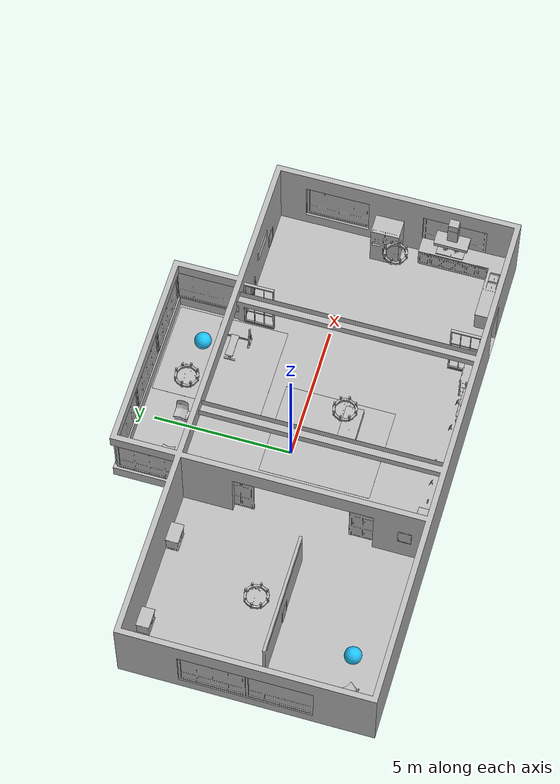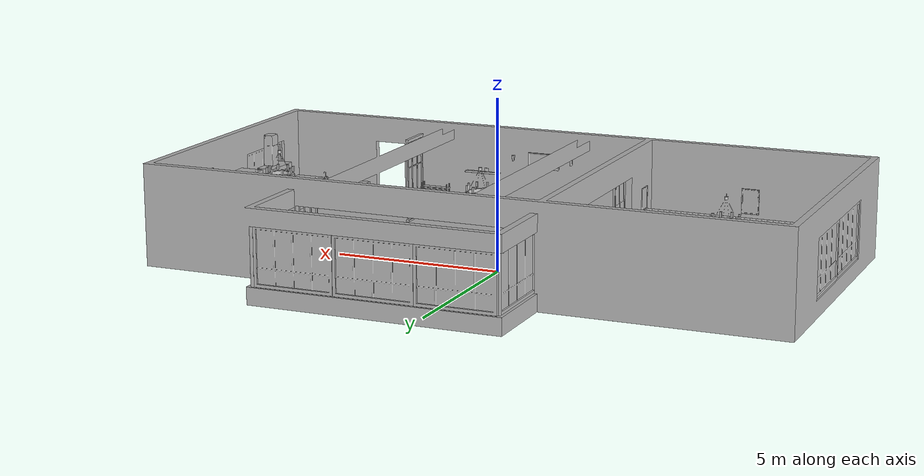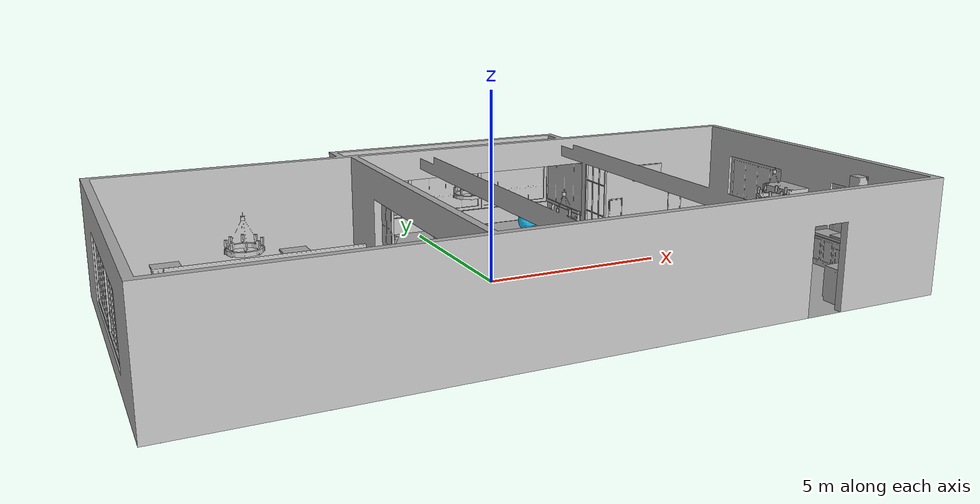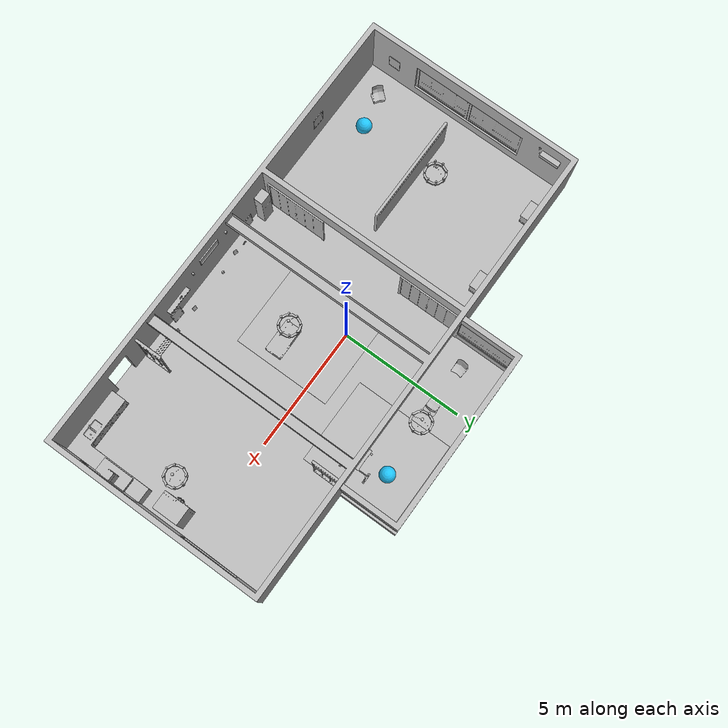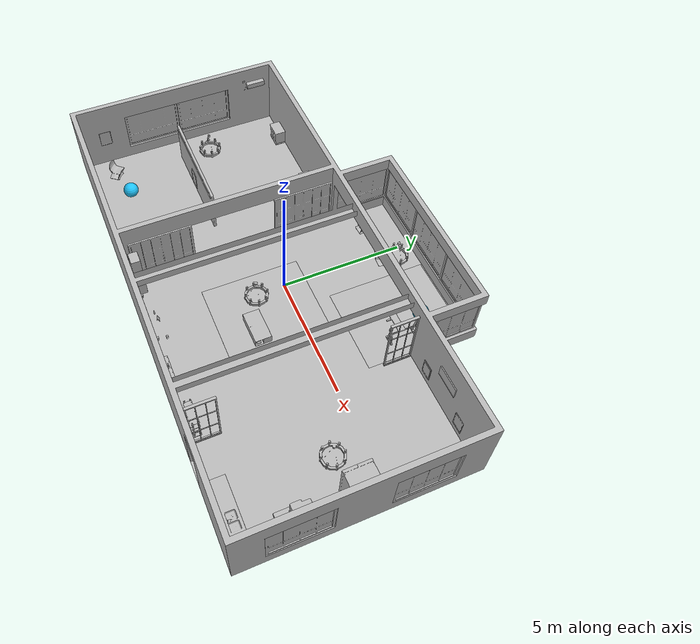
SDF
<sdf version="1.8">
 <world name="default">
  <physics name="1ms" type="ignored">
   <max_step_size>0.001</max_step_size>
   <real_time_factor>1</real_time_factor>
   <real_time_update_rate>1000</real_time_update_rate>
  </physics>
  <plugin name="gz::sim::systems::Physics" filename="gz-sim-physics-system"/>
  <plugin name="gz::sim::systems::UserCommands" filename="gz-sim-user-commands-system"/>
  <plugin name="gz::sim::systems::SceneBroadcaster" filename="gz-sim-scene-broadcaster-system"/>
  <plugin name="gz::sim::systems::Sensors" filename="gz-sim-sensors-system">
   <render_engine>ogre2</render_engine>
  </plugin>
  <plugin filename="MinimalScene" name="3D View">
   <gz-gui>
    <title>3D View</title>
    <property type="bool" key="showTitleBar">false</property>
    <property type="string" key="state">docked</property>
   </gz-gui>
   <engine>ogre2</engine>
   <scene>scene</scene>
   <ambient_light>0.4 0.4 0.4 1.0</ambient_light>
   <background_color>0.7 0.7 0.7 1.0</background_color>
   <camera_pose>-4.4965503 -0.4874 1.508684 0 -0 0</camera_pose>
   <camera_clip><near>0.25</near><far>25000</far></camera_clip>
  </plugin>
  <plugin filename="GzSceneManager" name="Scene Manager">
   <gz-gui>
    <property key="resizable" type="bool">true</property>
    <property key="width" type="double">5</property>
    <property key="height" type="double">5</property>
    <property key="state" type="string">floating</property>
    <property key="showTitleBar" type="bool">true</property>
   </gz-gui>
  </plugin>
  <plugin filename="WorldControl" name="World control">
   <gz-gui>
    <title>World control</title>
    <property type="bool" key="showTitleBar">true</property>
    <property type="bool" key="resizable">true</property>
    <property type="double" key="height">72</property>
    <property type="double" key="width">121</property>
    <property type="double" key="z">1</property>
    <property type="string" key="state">floating</property>
    <anchors target="3D View"><line own="left" target="left"/><line own="bottom" target="bottom"/></anchors>
   </gz-gui>
   <play_pause>true</play_pause>
   <step>true</step>
   <start_paused>true</start_paused>
   <service>/world/world_demo/control</service>
   <stats_topic>/world/world_demo/stats</stats_topic>
  </plugin>
  <model name="AirconditionerA_01_001">
   <static>true</static>
   <include><uri>model://aws_robomaker_residential_AirconditionerA_01</uri></include>
   <pose relative_to="">-9.199410 2.411230 2.084544 0 -0 0</pose>
  </model>
  <model name="AirconditionerB_01_001">
   <static>true</static>
   <include><uri>model://aws_robomaker_residential_AirconditionerB_01</uri></include>
   <pose relative_to="">-2.004656 -5.226610 0.003485 0 -0 0</pose>
  </model>
  <model name="Ball_01_001">
   <static>true</static>
   <include><uri>model://aws_robomaker_residential_Ball_01</uri></include>
   <pose relative_to="">3.295503 4.225674 0.318684 0 -0 0</pose>
  </model>
  <model name="Ball_01_003">
   <static>true</static>
   <include><uri>model://aws_robomaker_residential_Ball_01</uri></include>
   <pose relative_to="">-6.945503 -4.22174 0.318684 0 -0 0</pose>
  </model>
  <model name="NightStand_01_001">
   <static>true</static>
   <include><uri>model://aws_robomaker_residential_NightStand_01</uri></include>
   <pose relative_to="">-7.725510 2.860420 0.005258 -0.000002 0 0</pose>
  </model>
  <model name="NightStand_01_002">
   <static>true</static>
   <include><uri>model://aws_robomaker_residential_NightStand_01</uri></include>
   <pose relative_to="">-4.407341 2.860420 0.005256 0 0.000002 0</pose>
  </model>
  <model name="Board_01_001">
   <static>true</static>
   <include><uri>model://aws_robomaker_residential_Board_01</uri></include>
   <pose relative_to="">2.779073 -5.392703 1.538173 0 -0 0</pose>
  </model>
  <model name="ChairD_01_001">
   <static>true</static>
   <include><uri>model://aws_robomaker_residential_ChairD_01</uri></include>
   <pose relative_to="">-1.380775 4.104456 0 0 -0 0</pose>
  </model>
  <model name="ChairD_01_002">
   <static>true</static>
   <include><uri>model://aws_robomaker_residential_ChairD_01</uri></include>
   <pose relative_to="">0.325214 4.104456 0 0 -0 -3.138741</pose>
  </model>
  <model name="ChairD_01_003">
   <static>true</static>
   <include><uri>model://aws_robomaker_residential_ChairD_01</uri></include>
   <pose relative_to="">-8.270775 -4.504456 0 0 -0 0.869673</pose>
  </model>
  <model name="Chandelier_01_001">
   <static>true</static>
   <include><uri>model://aws_robomaker_residential_Chandelier_01</uri></include>
   <pose relative_to="">1.221061 4.155740 1.295000 0 -0 0</pose>
  </model>
  <model name="Chandelier_01_002">
   <static>true</static>
   <include><uri>model://aws_robomaker_residential_Chandelier_01</uri></include>
   <pose relative_to="">-6.451061 -0.692040 1.810000 0 -0 0</pose>
  </model>
  <model name="Chandelier_01_003">
   <static>true</static>
   <include><uri>model://aws_robomaker_residential_Chandelier_01</uri></include>
   <pose relative_to="">7.824061 -1.59 1.7510000 0 -0 0</pose>
  </model>
  <model name="Chandelier_01_004">
   <static>true</static>
   <include><uri>model://aws_robomaker_residential_Chandelier_01</uri></include>
   <pose relative_to="">1.221061 -1.592040 1.7873000 0 -0 0</pose>
  </model>
  <model name="Carpet_01_001">
   <static>true</static>
   <include><uri>model://aws_robomaker_residential_Carpet_01</uri></include>
   <pose relative_to="">0.785050 -1.106647 0.001106 0 -0 0</pose>
  </model>
  <model name="Carpet_01_002">
   <static>true</static>
   <include><uri>model://aws_robomaker_residential_Carpet_01</uri></include>
   <pose relative_to="">2.854050 3.45 0.000585 0 -0 0</pose>
  </model>
  <model name="SecurityCamera_01_001">
   <static>true</static>
   <include><uri>model://aws_robomaker_residential_SecurityCamera_01</uri></include>
   <pose relative_to="">0.842134 -4.996294 0.495067 0 -0 -2.841039</pose>
  </model>
  <model name="CoffeeTable_01_001">
   <static>true</static>
   <include><uri>model://aws_robomaker_residential_CoffeeTable_01</uri></include>
   <pose relative_to="">1.512301 -1.733438 0.041983 0.000000 0.000000 0.01000</pose>
  </model>
  <model name="CookingBench_01_001">
   <include><uri>model://aws_robomaker_residential_CookingBench_01</uri></include>
   <pose relative_to="">9.038383 -3.351140 0.903610 0 -0 3.137133</pose>
   <static>true</static>
  </model>
  <model name="FitnessEquipment_01_001">
   <static>true</static>
   <include><uri>model://aws_robomaker_residential_FitnessEquipment_01</uri></include>
   <pose relative_to="">3.484720 3.169104 0.003168 0 -0 0</pose>
  </model>
  <model name="FoldingDoor_01_001">
   <static>true</static>
   <include><uri>model://aws_robomaker_residential_FoldingDoor_01</uri></include>
   <pose relative_to="">-2.461096 1.844219 0.041881 0 -0 0</pose>
  </model>
  <model name="FoldingDoor_01_002">
   <static>true</static>
   <include><uri>model://aws_robomaker_residential_FoldingDoor_01</uri></include>
   <pose relative_to="">-2.461096 -4.053320 0.041881 0 -0 0</pose>
  </model>
  <model name="HouseWallB_01_001">
   <static>true</static>
   <include><uri>model://aws_robomaker_residential_HouseWallB_01</uri></include>
   <pose relative_to="">0 0 0 0 -0 0</pose>
  </model>
  <model name="FloorB_01_001">
   <static>true</static>
   <include><uri>model://aws_robomaker_residential_FloorB_01</uri></include>
   <pose relative_to="">0 0 0 0 -0 0</pose>
  </model>
  <model name="FoldingDoor_02_001">
   <static>true</static>
   <include><uri>model://aws_robomaker_residential_FoldingDoor_02</uri></include>
   <pose relative_to="">4.674231 2.46451 0 0 -0 3.14159</pose>
  </model>
  <model name="FoldingDoor_02_002">
   <static>true</static>
   <include><uri>model://aws_robomaker_residential_FoldingDoor_02</uri></include>
   <pose relative_to="">4.8912 -4.84968 0 0 -0 0</pose>
  </model>
  <model name="KitchenCabinet_01_001">
   <static>true</static>
   <include><uri>model://aws_robomaker_residential_KitchenCabinet_01</uri></include>
   <pose relative_to="">8.002009 -3.836509 0.012068 0 -0 -3.140001</pose>
  </model>
  <model name="LightC_01_001">
   <static>true</static>
   <include><uri>model://aws_robomaker_residential_LightC_01</uri></include>
   <pose relative_to="">1.769567 -5.4443710 2.000000 0 -0 0</pose>
  </model>
  <model name="LightC_01_002">
   <static>true</static>
   <include><uri>model://aws_robomaker_residential_LightC_01</uri></include>
   <pose relative_to="">-0.138245 -5.4443710 2.000000 0 -0 0</pose>
  </model>
  <model name="PortraitA_01">
   <static>true</static>
   <include><uri>model://aws_robomaker_residential_PortraitA_01</uri></include>
   <pose relative_to="">-2.712360 -4.817539 1.00000 0 -0 1.566796</pose>
  </model>
  <model name="PortraitB_01">
   <static>true</static>
   <include><uri>model://aws_robomaker_residential_PortraitB_01</uri></include>
   <pose relative_to="">-1.279683 -5.429630 0.0 -0.076901 0 -3.116718</pose>
  </model>
  <model name="PortraitB_02">
   <static>true</static>
   <include><uri>model://aws_robomaker_residential_PortraitB_02</uri></include>
   <pose relative_to="">5.737017 3.080310 0.300000 0 -0 0</pose>
  </model>
  <model name="PortraitB_03">
   <static>true</static>
   <include><uri>model://aws_robomaker_residential_PortraitB_03</uri></include>
   <pose relative_to="">3.071380 -5.349366 0.005494 -0.168428 0.0 3.104232</pose>
  </model>
  <model name="PortraitA_02">
   <static>true</static>
   <include><uri>model://aws_robomaker_residential_PortraitA_02</uri></include>
   <pose relative_to="">7.937017 3.080310 0.300000 0 -0 3.14</pose>
  </model>
  <model name="PortraitC_01">
   <static>true</static>
   <include><uri>model://aws_robomaker_residential_PortraitC_01</uri></include>
   <pose relative_to="">-9.294904 -4.526084 1.000000 0 -0 1.554734</pose>
  </model>
  <model name="PortraitD_01">
   <static>true</static>
   <include><uri>model://aws_robomaker_residential_PortraitD_01</uri></include>
   <pose relative_to="">0.789763 -5.478725 1.800000 0 -0 3.138531</pose>
  </model>
  <model name="PortraitD_02">
   <static>true</static>
   <include><uri>model://aws_robomaker_residential_PortraitD_02</uri></include>
   <pose relative_to="">6.870181 3.080310 1.488439 0 -0 0</pose>
  </model>
  <model name="PortraitE_01">
   <static>true</static>
   <include><uri>model://aws_robomaker_residential_PortraitE_01</uri></include>
   <pose relative_to="">-5.773094 -5.492466 1.000000 0 -0 3.132627</pose>
  </model>
  <model name="PortraitE_02">
   <static>true</static>
   <include><uri>model://aws_robomaker_residential_PortraitE_02</uri></include>
   <pose relative_to="">-6.193025 -1.590208 0.3 0 -0 0.004290</pose>
  </model>
  <model name="DeskPortraitA_01">
   <static>true</static>
   <include><uri>model://aws_robomaker_residential_DeskPortraitA_01</uri></include>
   <pose relative_to="">-0.036864 -5.110156 0.498660 0 -0 2.927784</pose>
  </model>
  <model name="DeskPortraitA_02">
   <static>true</static>
   <include><uri>model://aws_robomaker_residential_DeskPortraitA_02</uri></include>
   <pose relative_to="">2.046082 -1.892926 0.0703880 -0.018328 -0.000441 1.576216</pose>
  </model>
  <model name="DeskPortraitD_01">
   <static>true</static>
   <include><uri>model://aws_robomaker_residential_DeskPortraitD_01</uri></include>
   <pose relative_to="">2.645560 -5.376225 1.573738 0 -0 -3.112826</pose>
  </model>
  <model name="DeskPortraitD_02">
   <static>true</static>
   <include><uri>model://aws_robomaker_residential_DeskPortraitD_02</uri></include>
   <pose relative_to="">-0.589211 -5.109890 0.192145 -0.000015 -0.000174 -3.112544</pose>
  </model>
  <model name="DeskPortraitD_03">
   <static>true</static>
   <include><uri>model://aws_robomaker_residential_DeskPortraitD_03</uri></include>
   <pose relative_to="">1.826729 -1.464881 0.126208 0.000010 0.000006 -3.114380</pose>
  </model>
  <model name="DeskPortraitD_04">
   <static>true</static>
   <include><uri>model://aws_robomaker_residential_DeskPortraitD_04</uri></include>
   <pose relative_to="">4.302132 -5.176568 0.202496 0.007118 -0.000001 3.046683</pose>
  </model>
  <model name="DeskPortraitB_01">
   <static>true</static>
   <include><uri>model://aws_robomaker_residential_DeskPortraitB_01</uri></include>
   <pose relative_to="">3.547376 -5.083898 -0.012660 -0.336622 -0.000001 3.046741</pose>
  </model>
  <model name="DeskPortraitB_02">
   <static>true</static>
   <include><uri>model://aws_robomaker_residential_DeskPortraitB_02</uri></include>
   <pose relative_to="">2.486270 -5.102525 -0.012660 -0.336621 0.000000 3.046798</pose>
  </model>
  <model name="Rangehood_01_001">
   <static>true</static>
   <include><uri>model://aws_robomaker_residential_Rangehood_01</uri></include>
   <pose relative_to="">9.019794 -3.369940 1.507605 0 -0 0</pose>
  </model>
  <model name="Refrigerator_01_001">
   <static>true</static>
   <include><uri>model://aws_robomaker_residential_Refrigerator_01</uri></include>
   <pose relative_to="">8.702731 -1.032031 0 0 -0 -1.563499</pose>
  </model>
  <model name="ShoeRack_01_001">
   <static>true</static>
   <include><uri>model://aws_robomaker_residential_ShoeRack_01</uri></include>
   <pose relative_to="">4.297978 -5.173566 0 0 -0 0</pose>
  </model>
  <model name="RoomWall_01_001">
   <static>true</static>
   <include><uri>model://aws_robomaker_residential_RoomWall_01</uri></include>
   <pose relative_to="">-6.097550 -1.496180 0.028124 0 -0 0</pose>
  </model>
  <model name="RoomWindow_01_001">
   <static>true</static>
   <include><uri>model://aws_robomaker_residential_RoomWindow_01</uri></include>
   <pose relative_to="">-9.418600 -0.026285 0.502739 0 -0 0</pose>
  </model>
  <model name="RoomWindow_01_002">
   <static>true</static>
   <include><uri>model://aws_robomaker_residential_RoomWindow_01</uri></include>
   <pose relative_to="">-9.418600 -2.374090 0.502739 0 -0 0</pose>
  </model>
  <model name="RoomWindow_01_003">
   <static>true</static>
   <include><uri>model://aws_robomaker_residential_RoomWindow_01</uri></include>
   <pose relative_to="">9.422616 -3.373981 0.502739 0 -0 -3.136099</pose>
  </model>
  <model name="RoomWindow_01_004">
   <static>true</static>
   <include><uri>model://aws_robomaker_residential_RoomWindow_01</uri></include>
   <pose relative_to="">9.422558 0.968520 0.496581 0 -0 -3.136099</pose>
  </model>
  <model name="RoomWindow_01_005">
   <static>true</static>
   <include><uri>model://aws_robomaker_residential_RoomWindow_01</uri></include>
   <pose relative_to="">4.722317 4.470281 0.502739 0 -0 -3.136099</pose>
  </model>
  <model name="RoomWindow_01_006">
   <static>true</static>
   <include><uri>model://aws_robomaker_residential_RoomWindow_01</uri></include>
   <pose relative_to="">3.488520 5.600688 0.502739 0 -0 -1.566274</pose>
  </model>
  <model name="RoomWindow_01_007">
   <static>true</static>
   <include><uri>model://aws_robomaker_residential_RoomWindow_01</uri></include>
   <pose relative_to="">1.140949 5.600688 0.502739 0 -0 -1.566274</pose>
  </model>
  <model name="RoomWindow_01_008">
   <static>true</static>
   <include><uri>model://aws_robomaker_residential_RoomWindow_01</uri></include>
   <pose relative_to="">-1.199340 5.600688 0.502739 0 -0 -1.566274</pose>
  </model>
  <model name="RoomWindow_01_009">
   <static>true</static>
   <include><uri>model://aws_robomaker_residential_RoomWindow_01</uri></include>
   <pose relative_to="">-2.396624 4.387607 0.502739 0 -0 0</pose>
  </model>
  <light name="LivingRoom_CeilingLight_0" type="point">
   <pose relative_to="">1.194296 4.155759 2.2 0 -0 0</pose>
   <diffuse>0.5 0.5 0.5 1</diffuse>
   <specular>0.1 0.1 0.1 1</specular>
   <attenuation>
    <range>20</range>
    <constant>0.32</constant>
    <linear>0.01</linear>
    <quadratic>0.03</quadratic>
   </attenuation>
   <direction>0 0 -1</direction>
  </light>
  <light name="LivingRoom_CeilingLight_1" type="point">
   <pose relative_to="">1.194296 -1.589959 2.2 0 -0 0</pose>
   <diffuse>0.5 0.5 0.5 1</diffuse>
   <specular>0.1 0.1 0.1 1</specular>
   <attenuation>
    <range>20</range>
    <constant>0.05</constant>
    <linear>0.01</linear>
    <quadratic>0.09</quadratic>
   </attenuation>
   <direction>0 0 -1</direction>
  </light>
  <light name="LivingRoom_WallLight_0" type="point">
   <pose relative_to="">1.76956 -5.444370 2.2 0 -0 0</pose>
   <diffuse>0.24 0.24 0.24 1</diffuse>
   <specular>0.1 0.1 0.1 1</specular>
   <attenuation>
    <range>20</range>
    <constant>0.12</constant>
    <linear>0.00</linear>
    <quadratic>0.03</quadratic>
   </attenuation>
   <direction>0 0 -1</direction>
  </light>
  <light name="LivingRoom_WallLight_1" type="point">
   <pose relative_to="">-0.13826 -5.444370 2.2 0 -0 0</pose>
   <diffuse>0.24 0.24 0.24 1</diffuse>
   <specular>0.1 0.1 0.1 1</specular>
   <attenuation>
    <range>20</range>
    <constant>0.12</constant>
    <linear>0.00</linear>
    <quadratic>0.03</quadratic>
   </attenuation>
   <direction>0 0 -1</direction>
  </light>
  <light name="TV_Light_0" type="point">
   <pose relative_to="">0.8269 -4.939577 1.1 0 -0 0</pose>
   <diffuse>0.31372 0.31372 0.34901 1</diffuse>
   <specular>0.1 0.1 0.1 1</specular>
   <attenuation>
    <range>3</range>
    <constant>0.10</constant>
    <linear>0.04</linear>
    <quadratic>0.50</quadratic>
   </attenuation>
   <direction>0 0 -1</direction>
  </light>
  <light name="BedRoom_Portrait_Light_0" type="spot">
   <pose relative_to="">-6.190379 -1.829697 1.5587 0.3 -0 0.0</pose>
   <diffuse>0.5 0.5 0.5 1</diffuse>
   <specular>0.1 0.1 0.1 1</specular>
   <attenuation>
    <range>20</range>
    <constant>0.50</constant>
    <linear>0.01</linear>
    <quadratic>0.00</quadratic>
   </attenuation>
   <spot><inner_angle>0.6</inner_angle><outer_angle>1.0</outer_angle><falloff>1.0</falloff></spot>
   <direction>0 0 -1</direction>
  </light>
  <light name="BedRoom_CeilingLight_0" type="point">
   <pose relative_to="">-6.451061 -0.692040 2.000000 0 -0 0</pose>
   <diffuse>0.5 0.5 0.5 1</diffuse>
   <specular>0.1 0.1 0.1 1</specular>
   <attenuation>
    <range>20</range>
    <constant>0.32</constant>
    <linear>0.01</linear>
    <quadratic>0.03</quadratic>
   </attenuation>
   <direction>0 0 -1</direction>
  </light>
  <light name="Kitchen_CeilingLight_0" type="point">
   <pose relative_to="">7.8582 -1.5905 2.280000 0 -0 0</pose>
   <diffuse>0.5 0.5 0.5 1</diffuse>
   <specular>0.1 0.1 0.1 1</specular>
   <attenuation>
    <range>20</range>
    <constant>0.3</constant>
    <linear>0.01</linear>
    <quadratic>0.01</quadratic>
   </attenuation>
   <direction>0 0 -1</direction>
  </light>
 </world>
</sdf>

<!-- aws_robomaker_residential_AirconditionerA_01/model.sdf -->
<sdf version="1.8">
  <model name="aws_robomaker_residential_AirconditionerA_01">
    <link name="link">
      <inertial>
        <mass>1</mass>
        <inertia>
          <ixx>  8.0943111097e-02 </ixx>
          <ixy> -8.1265470074e-06 </ixy>
          <ixz>  3.8829570571e-03 </ixz>
          <iyy>  7.7648100944e-02 </iyy>
          <iyz>  5.1340621216e-05 </iyz>
          <izz>  1.1188592910e-02 </izz>
        </inertia>
      </inertial>
      <collision name="collision">
        <geometry>
          <mesh>
            <uri>model://aws_robomaker_residential_AirconditionerA_01/meshes/aws_AirconditionerA_01_collision.DAE</uri>
            <scale>1 1 1</scale>
          </mesh>
        </geometry>
      </collision>
      <visual name="visual">
	      <geometry>
          <mesh>
            <uri>model://aws_robomaker_residential_AirconditionerA_01/meshes/aws_AirconditionerA_01_visual.DAE</uri>
          </mesh>
        </geometry>
        <meta> <layer> 1 </layer></meta>
      </visual>
    </link>
	  <static>1</static>
  </model>
</sdf>

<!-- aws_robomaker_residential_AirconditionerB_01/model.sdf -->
<sdf version="1.8">
  <model name="aws_robomaker_residential_AirconditionerB_01">
    <link name="link">
      <inertial>
        <mass>1</mass>
        <inertia>
          <ixx>  3.5606825555e-01 </ixx>
          <ixy> -4.7724185539e-11 </ixy>
          <ixz>  4.6632465087e-14 </ixz>
          <iyy>  3.5592090264e-02 </iyy>
          <iyz> -2.6310178830e-11 </iyz>
          <izz>  3.6376805669e-01 </izz>
        </inertia>
      </inertial>
      <collision name="collision">
        <geometry>
          <mesh>
	  <uri>model://aws_robomaker_residential_AirconditionerB_01/meshes/aws_AirconditionerB_01_collision.DAE</uri>
            <scale>1 1 1</scale>
          </mesh>
        </geometry>
      </collision>
      <visual name="visual">
	      <geometry>
          <mesh>
            <uri>model://aws_robomaker_residential_AirconditionerB_01/meshes/aws_AirconditionerB_01_visual.DAE</uri>
          </mesh>
        </geometry>
        <meta> <layer> 1 </layer></meta>
      </visual>
    </link>
  </model>
</sdf>

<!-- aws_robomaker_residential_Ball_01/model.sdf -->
<sdf version="1.8">
  <model name="aws_robomaker_residential_Ball_01">
    <link name="link">
      <inertial>
        <mass>0.12</mass>
        <inertia>
          <ixx>  3.8749023340e-02 </ixx>
          <ixy> -1.0450629836e-09 </ixy>
          <ixz>  4.9179161356e-09 </ixz>
          <iyy>  3.8433714890e-02 </iyy>
          <iyz>  5.9071629616e-11 </iyz>
          <izz>  3.8749023340e-02 </izz>
        </inertia>
      </inertial>
      <collision name="collision">

        <geometry>
          <sphere>
            <radius>0.31 </radius>
          </sphere>

        </geometry>

        <surface>
          <friction>
            <ode>
              <mu>0.85</mu>
              <mu2>0.85</mu2>
            </ode>
          </friction>

        <!-- Add some bounciness to the ball -->
          <contact>
            <ode>
              <kd>8500</kd>
              <max_vel>5.1</max_vel>
            </ode>
          </contact>
        </surface>

      </collision>
      <visual name="visual">
	      <geometry>
          <sphere>
            <radius>0.31 </radius>
          </sphere>
      </geometry>
          <material>
            <diffuse>0.12 0.76 0.97 1</diffuse>
            <ambient>0.03 0.21 0.27 1</ambient>
          </material>
        <meta> <layer> 1 </layer></meta>
      </visual>
    </link>
  </model>
</sdf>

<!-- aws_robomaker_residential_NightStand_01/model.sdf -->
<sdf version="1.8">
  <model name="aws_robomaker_residential_NightStand_01">
    <link name="link">
      <inertial>
        <mass>13.6</mass>
        <inertia>
          <ixx>  5.9068121342e-02 </ixx>
          <ixy> -0.0000000000e+00 </ixy>
          <ixz>  0.0000000000e+00 </ixz>
          <iyy>  6.4866772161e-02 </iyy>
          <iyz>  0.0000000000e+00 </iyz>
          <izz>  8.5677794724e-02 </izz>
        </inertia>
      </inertial>
      <collision name="collision">
        <geometry>
          <mesh>
            <uri>model://aws_robomaker_residential_NightStand_01/meshes/aws_NightStand_01_collision.DAE</uri>
            <scale>1 1 1</scale>
          </mesh>
        </geometry>
      </collision>
      <visual name="visual">
	      <geometry>
          <mesh>
            <uri>model://aws_robomaker_residential_NightStand_01/meshes/aws_NightStand_01_visual.DAE</uri>
          </mesh>
        </geometry>
        <meta> <layer> 1 </layer></meta>
      </visual>
    </link>
    <static>1</static>
  </model>
</sdf>

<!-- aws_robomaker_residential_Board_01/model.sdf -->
<sdf version="1.8">
  <model name="aws_robomaker_residential_Board_01">
    <link name="link">
      <inertial>
        <mass>1</mass>
      </inertial>
      <collision name="collision">
        <geometry>
          <mesh>
            <uri>model://aws_robomaker_residential_Board_01/meshes/aws_Board_01_collision.DAE</uri>
            <scale>1 1 1</scale>
          </mesh>
        </geometry>
      </collision>
      <visual name="visual">
	      <geometry>
          <mesh>
            <uri>model://aws_robomaker_residential_Board_01/meshes/aws_Board_01_visual.DAE</uri>
          </mesh>
        </geometry>
      <meta> <layer> 2 </layer></meta>
      </visual>
    </link>

    <static>1</static>
  </model>
</sdf>

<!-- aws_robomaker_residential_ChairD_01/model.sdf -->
<sdf version="1.8">
  <model name="aws_robomaker_residential_ChairD_01">
    <link name="link">

      <inertial>
        <inertia>
          <ixx>  5.5200427517e-02 </ixx>
          <ixy>  1.2896722661e-02 </ixy>
          <ixz>  1.5893767493e-04 </ixz>
          <iyy>  4.0396087891e-02 </iyy>
          <iyz> -2.8293607821e-04 </iyz>
          <izz>  6.5806204881e-02 </izz>
        </inertia>
      </inertial>

      <collision name="collision">

        <geometry>
          <mesh>
            <uri>model://aws_robomaker_residential_ChairD_01/meshes/aws_ChairD_01_collision.DAE</uri>
            <scale>1 1 1</scale>
          </mesh>
        </geometry>

      </collision>
      <visual name="visual">
	      <geometry>
          <mesh>
            <uri>model://aws_robomaker_residential_ChairD_01/meshes/aws_ChairD_01_visual.DAE</uri>
          </mesh>
        </geometry>
        <meta> <layer> 1 </layer></meta>
      </visual>
    </link>
  </model>
</sdf>

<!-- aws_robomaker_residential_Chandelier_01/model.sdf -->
<sdf version="1.8">
  <model name="aws_robomaker_residential_Chandelier_01">
    <link name="link">
      <inertial>
        <mass>1</mass>
        <inertia>
          <ixx>  9.8314889873e-02 </ixx>
          <ixy>  8.1564130546e-05 </ixy>
          <ixz> -2.2898136825e-09 </ixz>
          <iyy>  1.1882498465e-01 </iyy>
          <iyz> -1.1171926154e-10 </iyz>
          <izz>  9.7043315192e-02 </izz>
        </inertia>
      </inertial>
      <collision name="collision">
        <geometry>
          <mesh>
            <uri>model://aws_robomaker_residential_Chandelier_01/meshes/aws_Chandelier_01_collision.DAE</uri>
            <scale>1 1 1</scale>
          </mesh>
        </geometry>
      </collision>
      <visual name="visual">
	      <geometry>
          <mesh>
            <uri>model://aws_robomaker_residential_Chandelier_01/meshes/aws_Chandelier_01_visual.DAE</uri>
          </mesh>
        </geometry>
      <meta> <layer> 2 </layer></meta>
      </visual>
    </link>
	  <static>1</static>
  </model>
</sdf>

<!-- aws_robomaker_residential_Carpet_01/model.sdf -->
<sdf version="1.8">
  <model name="aws_robomaker_residential_Carpet_01">
    <link name="link">
      <inertial>
        <mass>8.1</mass>
        <inertia>
          <ixx>  1.3412920773e+00 </ixx>
          <ixy> -0.0000000000e+00 </ixy>
          <ixz>  0.0000000000e+00 </ixz>
          <iyy>  2.3413254318e+00 </iyy>
          <iyz>  0.0000000000e+00 </iyz>
          <izz>  1.0000339302e+00 </izz>
        </inertia>
      </inertial>

      <collision name="collision">

        <geometry>
          <mesh>
            <uri>model://aws_robomaker_residential_Carpet_01/meshes/aws_Carpet_01_collision.DAE</uri>
            <scale>1 1 0.95</scale>
          </mesh>
        </geometry>

        <surface>
          <friction>
            <ode>
              <mu>100</mu>
              <mu2>50</mu2>
            </ode>
          </friction>
          <contact>
            <ode>
            </ode>
          </contact>
        </surface>

        <pose>0 0 -0.01 0 0 0 </pose>
      </collision>

      <visual name="visual">
	      <geometry>
          <mesh>
            <uri>model://aws_robomaker_residential_Carpet_01/meshes/aws_Carpet_01_visual.DAE</uri>
          </mesh>
        </geometry>
        <meta> <layer> 1 </layer></meta>
      </visual>
    </link>

    <static>1</static>

  </model>
</sdf>

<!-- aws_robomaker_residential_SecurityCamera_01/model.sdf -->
<sdf version="1.8">
  <model name="aws_robomaker_residential_SecurityCamera_01">
    <link name="link">
      <inertial>
        <mass>1</mass>
        <inertia>
          <ixx>  2.6611078438e-03 </ixx>
          <ixy>  1.0706885011e-05 </ixy>
          <ixz>  2.0864173746e-07 </ixz>
          <iyy>  1.0021836517e-03 </iyy>
          <iyz> -5.4377964674e-05 </iyz>
          <izz>  2.8448705233e-03 </izz>
        </inertia>
      </inertial>
      <collision name="collision">
        <geometry>
          <mesh>
            <uri>model://aws_robomaker_residential_SecurityCamera_01/meshes/aws_SecurityCamera_01_collision.DAE</uri>
            <scale>1 1 1</scale>
          </mesh>
        </geometry>
      </collision>
      <visual name="visual">
	      <geometry>
          <mesh>
            <uri>model://aws_robomaker_residential_SecurityCamera_01/meshes/aws_SecurityCamera_01_visual.DAE</uri>
          </mesh>
        </geometry>
        <meta>
          <layer>2</layer>
        </meta>
      </visual>
    </link>
  </model>
</sdf>

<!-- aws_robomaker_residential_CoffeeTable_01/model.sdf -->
<sdf version="1.8">
  <model name="aws_robomaker_residential_CoffeeTable_01">
    <link name="link">
      <inertial>
        <mass>21.7</mass>

        <inertia>
          <ixx>0.8137499999999998</ixx>
          <ixy>0</ixy>
          <ixz>0</ixz>
          <iyy>2.76675</iyy>
          <iyz>0</iyz>
          <izz>3.254</izz>
        </inertia>

      </inertial>

      <collision name="collision">
        <geometry>
          <mesh>
            <uri>model://aws_robomaker_residential_CoffeeTable_01/meshes/aws_CoffeeTable_01_collision.DAE</uri>
            <scale>1 1 1</scale>
          </mesh>
        </geometry>

        <surface>
          <contact>
            <ode>
              <max_vel>0.01</max_vel>
            </ode>
          </contact>
         </surface>
      </collision>

      <visual name="visual">
	      <geometry>
          <mesh>
            <uri>model://aws_robomaker_residential_CoffeeTable_01/meshes/aws_CoffeeTable_01_visual.DAE</uri>
          </mesh>
        </geometry>
        <meta> <layer> 1 </layer></meta>
      </visual>
    </link>
    <static>1</static>
  </model>
</sdf>

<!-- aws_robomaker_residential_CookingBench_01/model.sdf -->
<sdf version="1.8">
  <model name="aws_robomaker_residential_CookingBench_01">
    <link name="link">
      <inertial>
        <mass>1</mass>
        <inertia>
          <ixx>  8.4704931274e-02 </ixx>
          <ixy> -3.3582970635e-14 </ixy>
          <ixz> -1.8657205909e-15 </ixz>
          <iyy>  1.0870613560e-01 </iyy>
          <iyz> -8.9711047690e-09 </iyz>
          <izz>  2.5599100723e-02 </izz>
        </inertia>
      </inertial>
      <collision name="collision">
        <geometry>
          <mesh>
            <uri>model://aws_robomaker_residential_CookingBench_01/meshes/aws_CookingBench_01_collision.DAE</uri>
            <scale>1 1 1</scale>
          </mesh>
        </geometry>
      </collision>
      <visual name="visual">
	      <geometry>
          <mesh>
            <uri>model://aws_robomaker_residential_CookingBench_01/meshes/aws_CookingBench_01_visual.DAE</uri>
          </mesh>
        </geometry>
        <meta> <layer> 1 </layer></meta>
      </visual>
    </link>
  </model>
</sdf>

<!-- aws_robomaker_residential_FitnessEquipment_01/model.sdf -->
<sdf version="1.8">
  <model name="aws_robomaker_residential_FitnessEquipment_01">
    <link name="link">
      <inertial>
        <mass>80</mass>
        <inertia>
          <ixx>  1.5231681051e-01 </ixx>
          <ixy> -1.0236824255e-02 </ixy>
          <ixz>  4.5347695138e-04 </ixz>
          <iyy>  2.2216050074e-01 </iyy>
          <iyz>  5.9325087530e-05 </iyz>
          <izz>  1.4138500592e-01 </izz>
        </inertia>
      </inertial>
      <collision name="collision">
        <geometry>
          <mesh>
            <uri>model://aws_robomaker_residential_FitnessEquipment_01/meshes/aws_FitnessEquipment_01_collision.DAE</uri>
            <scale>1 1 1</scale>
          </mesh>
        </geometry>
      </collision>
      <visual name="visual">
	      <geometry>
          <mesh>
            <uri>model://aws_robomaker_residential_FitnessEquipment_01/meshes/aws_FitnessEquipment_01_visual.DAE</uri>
          </mesh>
        </geometry>
        <meta> <layer> 1 </layer></meta>
      </visual>
    </link>
  <static>1</static>
  </model>
</sdf>

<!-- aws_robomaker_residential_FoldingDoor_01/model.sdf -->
<sdf version="1.8">
  <model name="aws_robomaker_residential_FoldingDoor_01">
    <link name="link">
      <inertial>
        <mass>1</mass>
        <inertia>
          <ixx>  9.3119001932e-01 </ixx>
          <ixy>  2.9413508071e-11 </ixy>
          <ixz>  2.9006137070e-14 </ixz>
          <iyy>  5.2412406595e-01 </iyy>
          <iyz>  2.8545710540e-11 </iyz>
          <izz>  4.0867490543e-01 </izz>
        </inertia>
      </inertial>
      <collision name="collision">
        <geometry>
          <mesh>
            <uri>model://aws_robomaker_residential_FoldingDoor_01/meshes/aws_FoldingDoor_01_collision.DAE</uri>
            <scale>1 1 1</scale>
          </mesh>
        </geometry>
      </collision>
      <visual name="visual">
	      <geometry>
          <mesh>
            <uri>model://aws_robomaker_residential_FoldingDoor_01/meshes/aws_FoldingDoor_01_visual.DAE</uri>
          </mesh>
        </geometry>
      <meta> <layer> 2 </layer></meta>
      </visual>
    </link>
	  <static>1</static>
  </model>
</sdf>

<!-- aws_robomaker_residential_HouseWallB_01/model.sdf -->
<sdf version="1.8">
  <model name="aws_robomaker_residential_HouseWallB_01">
    <link name="link">
      <inertial>
        <mass>1</mass>
      </inertial>
      <collision name="collision">
        <geometry>
          <mesh>
            <uri>model://aws_robomaker_residential_HouseWallB_01/meshes/aws_HouseWallB_01_collision.DAE</uri>
            <scale>1 1 1</scale>
          </mesh>
        </geometry>
      </collision>
      <visual name="visual">
	      <geometry>
          <mesh>
            <uri>model://aws_robomaker_residential_HouseWallB_01/meshes/aws_HouseWallB_01_visual.DAE</uri>
          </mesh>
        </geometry>
      <meta> <layer> 2 </layer></meta>
      </visual>
    </link>
<static>1</static>
  </model>
</sdf>

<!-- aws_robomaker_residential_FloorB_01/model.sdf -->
<sdf version="1.8">
  <model name="aws_robomaker_residential_FloorB_01">
    <link name="link">
      <inertial>
        <mass>100</mass>
        <inertia>
          <ixx>  8.9147242934e+00 </ixx>
          <ixy> -2.1042172774e-11 </ixy>
          <ixz>  5.6353464636e-01 </ixz>
          <iyy>  3.6723713216e+01 </iyy>
          <iyz> -5.7139224410e-10 </iyz>
          <izz>  2.7809315968e+01 </izz>
        </inertia>
      </inertial>

      <collision name="collision">
        <geometry>
          <mesh>
            <uri>model://aws_robomaker_residential_FloorB_01/meshes/aws_FloorB_01_collision.DAE</uri>
            <scale>1 1 0.9</scale>
          </mesh>
        </geometry>

        <surface>
          <friction>
            <ode>
              <mu>100</mu>
              <mu2>50</mu2>
            </ode>
          </friction>
        </surface>
      </collision>

      <visual name="visual">
	      <geometry>
          <mesh>
            <uri>model://aws_robomaker_residential_FloorB_01/meshes/aws_FloorB_01_visual.DAE</uri>
          </mesh>
        </geometry>
        <meta> <layer> 1 </layer></meta>
      </visual>
    </link>

	<static>1</static>
  </model>
</sdf>

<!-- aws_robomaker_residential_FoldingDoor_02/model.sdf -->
<sdf version="1.8">
  <model name="aws_robomaker_residential_FoldingDoor_02">
    <link name="link">
      <inertial>
        <mass>1</mass>
        <inertia>
          <ixx>  6.7038465772e-01 </ixx>
          <ixy>  1.3526701807e-11 </ixy>
          <ixz>  1.5530775261e-13 </ixz>
          <iyy>  1.0675443047e-01 </iyy>
          <iyz>  2.9926273083e-09 </iyz>
          <izz>  5.6555139368e-01 </izz>
        </inertia>
      </inertial>
      <collision name="collision">
        <geometry>
          <mesh>
            <uri>model://aws_robomaker_residential_FoldingDoor_02/meshes/aws_FoldingDoor_02_collision.DAE</uri>
            <scale>1 1 1</scale>
          </mesh>
        </geometry>
      </collision>
      <visual name="visual">
	      <geometry>
          <mesh>
            <uri>model://aws_robomaker_residential_FoldingDoor_02/meshes/aws_FoldingDoor_02_visual.DAE</uri>
          </mesh>
        </geometry>
      <meta> <layer> 2 </layer></meta>
      </visual>
    </link>
<static>1</static>
  </model>
</sdf>

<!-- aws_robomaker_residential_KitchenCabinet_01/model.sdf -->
<sdf version="1.8">
  <model name="aws_robomaker_residential_KitchenCabinet_01">
    <link name="link">
      <inertial>
        <mass>1</mass>
        <inertia>
          <ixx>  1.0168440299e+00 </ixx>
          <ixy> -7.6425744877e-04 </ixy>
          <ixz>  3.9723161102e-01 </ixz>
          <iyy>  1.4853953831e+00 </iyy>
          <iyz>  1.1100048935e-03 </iyz>
          <izz>  6.0507693907e-01 </izz>
        </inertia>
      </inertial>
      <collision name="collision">
        <laser_retro>0</laser_retro>
        <max_contacts>10</max_contacts>
        <geometry>
          <mesh>
            <uri>model://aws_robomaker_residential_KitchenCabinet_01/meshes/aws_KitchenCabinet_01_collision.DAE</uri>
            <scale>1 1 1</scale>
          </mesh>
        </geometry>
      </collision>
      <visual name="visual">
	      <geometry>
          <mesh>
            <uri>model://aws_robomaker_residential_KitchenCabinet_01/meshes/aws_KitchenCabinet_01_visual.DAE</uri>
          </mesh>
        </geometry>
        <meta> <layer> 1 </layer></meta>
      </visual>
    </link>

    <static>1</static>
  </model>
</sdf>

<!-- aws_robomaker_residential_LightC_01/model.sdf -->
<sdf version="1.8">
  <model name="aws_robomaker_residential_LightC_01">
    <link name="link">
      <inertial>
        <mass>1</mass>
        <inertia>
          <ixx>  2.9810499065e-03 </ixx>
          <ixy> -2.1245436995e-05 </ixy>
          <ixz> -4.6128517701e-06 </ixz>
          <iyy>  1.0491745309e-03 </iyy>
          <iyz>  5.4737851285e-05 </iyz>
          <izz>  2.9229620954e-03 </izz>
        </inertia>
      </inertial>
      <collision name="collision">
        <geometry>
          <mesh>
            <uri>model://aws_robomaker_residential_LightC_01/meshes/aws_LightC_01_collision.DAE</uri>
            <scale>1 1 1</scale>
          </mesh>
        </geometry>
      </collision>
      <visual name="visual">
	      <geometry>
          <mesh>
            <uri>model://aws_robomaker_residential_LightC_01/meshes/aws_LightC_01_visual.DAE</uri>
          </mesh>
        </geometry>
      <meta> <layer> 2 </layer></meta>
      </visual>
    </link>
	  <static>1</static>
  </model>
</sdf>

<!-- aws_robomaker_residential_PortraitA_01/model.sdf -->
<sdf version="1.8">
  <model name="aws_robomaker_residential_PortraitA_01">
    <link name="link">
      <inertial>
        <mass>1	</mass>
        <inertia>
          <ixx>  4.3388701859e-02 </ixx>
          <ixy>  3.0630320763e-10 </ixy>
          <ixz> -9.1092117801e-12 </ixz>
          <iyy>  2.2485859760e-02 </iyy>
          <iyz>  6.0319674257e-09 </iyz>
          <izz>  6.5832494111e-02 </izz>
        </inertia>
      </inertial>
      <collision name="collision">
        <geometry>
          <mesh>
            <uri>model://aws_robomaker_residential_PortraitA_01/meshes/aws_PortraitA_01_collision.DAE</uri>
            <scale>1 1 1</scale>
          </mesh>
        </geometry>
      </collision>
      <visual name="visual">
	      <geometry>
          <mesh>
            <uri>model://aws_robomaker_residential_PortraitA_01/meshes/aws_PortraitA_01_visual.DAE</uri>
          </mesh>
        </geometry>
      <meta> <layer> 2 </layer></meta>
      </visual>
    </link>
	  <static>1</static>
  </model>
</sdf>

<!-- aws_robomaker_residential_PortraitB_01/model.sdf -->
<sdf version="1.8">
  <model name="aws_robomaker_residential_PortraitB_01">
    <link name="link">
      <inertial>
        <mass>1</mass>
        <inertia>
          <ixx>  4.0161427430e-02 </ixx>
          <ixy>  1.4352328739e-06 </ixy>
          <ixz> -3.6480670326e-07 </ixz>
          <iyy>  2.0215045670e-02 </iyy>
          <iyz> -4.3301252455e-07 </iyz>
          <izz>  6.0277852191e-02 </izz>
        </inertia>
      </inertial>
      <collision name="collision">
        <geometry>
          <mesh>
            <uri>model://aws_robomaker_residential_PortraitB_01/meshes/aws_PortraitB_01_collision.DAE</uri>
            <scale>1 1 1</scale>
          </mesh>
        </geometry>
      </collision>
      <visual name="visual">
	      <geometry>
          <mesh>
            <uri>model://aws_robomaker_residential_PortraitB_01/meshes/aws_PortraitB_01_visual.DAE</uri>
          </mesh>
        </geometry>
      <meta> <layer> 2 </layer></meta>
      </visual>
    </link>
	  <static>1</static>
  </model>
</sdf>

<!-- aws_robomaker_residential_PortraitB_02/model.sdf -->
<sdf version="1.8">
  <model name="aws_robomaker_residential_PortraitB_02">
    <link name="link">
      <inertial>
        <mass>1</mass>
        <inertia>
          <ixx>  4.0161427430e-02 </ixx>
          <ixy>  1.4352328739e-06 </ixy>
          <ixz> -3.6480670326e-07 </ixz>
          <iyy>  2.0215045670e-02 </iyy>
          <iyz> -4.3301252455e-07 </iyz>
          <izz>  6.0277852191e-02 </izz>
        </inertia>
      </inertial>
      <collision name="collision">
        <geometry>
          <mesh>
            <uri>model://aws_robomaker_residential_PortraitB_02/meshes/aws_PortraitB_01_collision.DAE</uri>
            <scale>1 1 1</scale>
          </mesh>
        </geometry>
      </collision>
      <visual name="visual">
	      <geometry>
          <mesh>
            <uri>model://aws_robomaker_residential_PortraitB_02/meshes/aws_PortraitB_01_visual.DAE</uri>
          </mesh>
        </geometry>
      <meta> <layer> 2 </layer></meta>
      </visual>
    </link>
	  <static>1</static>
  </model>
</sdf>

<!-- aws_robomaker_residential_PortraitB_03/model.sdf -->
<sdf version="1.8">
  <model name="aws_robomaker_residential_PortraitB_03">
    <link name="link">
      <inertial>
        <mass>1</mass>
        <inertia>
          <ixx>  4.0161427430e-02 </ixx>
          <ixy>  1.4352328739e-06 </ixy>
          <ixz> -3.6480670326e-07 </ixz>
          <iyy>  2.0215045670e-02 </iyy>
          <iyz> -4.3301252455e-07 </iyz>
          <izz>  6.0277852191e-02 </izz>
        </inertia>
      </inertial>
      <collision name="collision">
        <geometry>
          <mesh>
            <uri>model://aws_robomaker_residential_PortraitB_03/meshes/aws_PortraitB_01_collision.DAE</uri>
            <scale>1 1 1</scale>
          </mesh>
        </geometry>
      </collision>
      <visual name="visual">
	      <geometry>
          <mesh>
            <uri>model://aws_robomaker_residential_PortraitB_03/meshes/aws_PortraitB_01_visual.DAE</uri>
          </mesh>
        </geometry>
      <meta> <layer> 2 </layer></meta>
      </visual>
    </link>
	  <static>1</static>
  </model>
</sdf>

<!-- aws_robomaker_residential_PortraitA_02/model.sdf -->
<sdf version="1.8">
  <model name="aws_robomaker_residential_PortraitA_02">
    <link name="link">
      <inertial>
        <mass>1</mass>
        <inertia>
          <ixx>  4.3388701859e-02 </ixx>
          <ixy>  3.0630320763e-10 </ixy>
          <ixz> -9.1092117801e-12 </ixz>
          <iyy>  2.2485859760e-02 </iyy>
          <iyz>  6.0319674257e-09 </iyz>
          <izz>  6.5832494111e-02 </izz>
        </inertia>
      </inertial>
      <collision name="collision">
        <geometry>
          <mesh>
            <uri>model://aws_robomaker_residential_PortraitA_02/meshes/aws_PortraitA_01_collision.DAE</uri>
            <scale>1 1 1</scale>
          </mesh>
        </geometry>
      </collision>
      <visual name="visual">
	      <geometry>
          <mesh>
            <uri>model://aws_robomaker_residential_PortraitA_02/meshes/aws_PortraitA_01_visual.DAE</uri>
          </mesh>
        </geometry>
      <meta> <layer> 2 </layer></meta>
      </visual>
    </link>
	  <static>1</static>
  </model>
</sdf>

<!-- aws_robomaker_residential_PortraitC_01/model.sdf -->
<sdf version="1.8">
  <model name="aws_robomaker_residential_PortraitC_01">
    <link name="link">
      <inertial>
        <mass>1</mass>
        <inertia>
          <ixx>  4.1680920499e-02 </ixx>
          <ixy>  8.8324870279e-09 </ixy>
          <ixz> -2.4337601335e-09 </ixz>
          <iyy>  2.1315698356e-02 </iyy>
          <iyz>  9.3247699585e-09 </iyz>
          <izz>  6.2960942901e-02 </izz>
        </inertia>
      </inertial>
      <collision name="collision">
        <geometry>
          <mesh>
            <uri>model://aws_robomaker_residential_PortraitC_01/meshes/aws_PortraitC_01_collision.DAE</uri>
            <scale>1 1 1</scale>
          </mesh>
        </geometry>
      </collision>
      <visual name="visual">
	      <geometry>
          <mesh>
            <uri>model://aws_robomaker_residential_PortraitC_01/meshes/aws_PortraitC_01_visual.DAE</uri>
          </mesh>
        </geometry>
      <meta> <layer> 2 </layer></meta>
      </visual>
    </link>
	  <static>1</static>
  </model>
</sdf>

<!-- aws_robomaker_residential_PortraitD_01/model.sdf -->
<sdf version="1.8">
  <model name="aws_robomaker_residential_PortraitD_01">
    <link name="link">

      <inertial>
        <mass>1.5</mass>
        <inertia>
          <ixx>  2.3174663948e-02 </ixx>
          <ixy> -1.2593853815e-08 </ixy>
          <ixz>  8.1109314687e-09 </ixz>
          <iyy>  9.0866794378e-02 </iyy>
          <iyz> -4.6072781400e-09 </iyz>
          <izz>  1.1385944236e-01 </izz>
        </inertia>
      </inertial>

      <collision name="collision">
        <geometry>
          <mesh>
            <uri>model://aws_robomaker_residential_PortraitD_01/meshes/aws_PortraitD_01_collision.DAE</uri>
            <scale>1 1 1</scale>
          </mesh>
        </geometry>

      </collision>

      <visual name="visual">
	      <geometry>
          <mesh>
            <uri>model://aws_robomaker_residential_PortraitD_01/meshes/aws_PortraitD_01_visual.DAE</uri>
          </mesh>
        </geometry>
      <meta> <layer> 2 </layer></meta>
      </visual>
    </link>
	  <static>1</static>
  </model>
</sdf>

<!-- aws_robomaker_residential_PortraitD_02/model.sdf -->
<sdf version="1.8">
  <model name="aws_robomaker_residential_PortraitD_02">
    <link name="link">

      <inertial>
        <mass>1.5</mass>
        <inertia>
          <ixx>  2.3174663948e-02 </ixx>
          <ixy> -1.2593853815e-08 </ixy>
          <ixz>  8.1109314687e-09 </ixz>
          <iyy>  9.0866794378e-02 </iyy>
          <iyz> -4.6072781400e-09 </iyz>
          <izz>  1.1385944236e-01 </izz>
        </inertia>
      </inertial>

      <collision name="collision">
        <geometry>
          <mesh>
            <uri>model://aws_robomaker_residential_PortraitD_02/meshes/aws_PortraitD_01_collision.DAE</uri>
            <scale>1 1 1</scale>
          </mesh>
        </geometry>

      </collision>

      <visual name="visual">
	      <geometry>
          <mesh>
            <uri>model://aws_robomaker_residential_PortraitD_02/meshes/aws_PortraitD_01_visual.DAE</uri>
          </mesh>
        </geometry>
      <meta> <layer> 2 </layer></meta>
      </visual>
    </link>
	  <static>1</static>
  </model>
</sdf>

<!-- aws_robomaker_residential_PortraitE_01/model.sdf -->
<sdf version="1.8">
  <model name="aws_robomaker_residential_PortraitE_01">
    <link name="link">
      <inertial>
        <mass>1</mass>
        <inertia>
          <ixx>  5.2859181793e-02 </ixx>
          <ixy>  4.0193623835e-10 </ixy>
          <ixz> -1.4222495617e-11 </ixz>
          <iyy>  2.7393923094e-02 </iyy>
          <iyz> -7.7871000909e-09 </iyz>
          <izz>  8.0201832081e-02 </izz>
        </inertia>
      </inertial>
      <collision name="collision">
        <geometry>
          <mesh>
            <uri>model://aws_robomaker_residential_PortraitE_01/meshes/aws_PortraitE_01_collision.DAE</uri>
            <scale>1 1 1</scale>
          </mesh>
        </geometry>
      </collision>
      <visual name="visual">
	      <geometry>
          <mesh>
            <uri>model://aws_robomaker_residential_PortraitE_01/meshes/aws_PortraitE_01_visual.DAE</uri>
          </mesh>
        </geometry>
      <meta> <layer> 2 </layer></meta>
      </visual>
    </link>
	  <static>1</static>
  </model>
</sdf>

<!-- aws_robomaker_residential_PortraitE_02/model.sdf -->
<sdf version="1.8">
  <model name="aws_robomaker_residential_PortraitE_02">
    <link name="link">
      <inertial>
        <mass>1</mass>
        <inertia>
          <ixx>  5.2859181793e-02 </ixx>
          <ixy>  4.0193623835e-10 </ixy>
          <ixz> -1.4222495617e-11 </ixz>
          <iyy>  2.7393923094e-02 </iyy>
          <iyz> -7.7871000909e-09 </iyz>
          <izz>  8.0201832081e-02 </izz>
        </inertia>
      </inertial>
      <collision name="collision">
        <geometry>
          <mesh>
            <uri>model://aws_robomaker_residential_PortraitE_02/meshes/aws_PortraitE_01_collision.DAE</uri>
            <scale>1 1 1</scale>
          </mesh>
        </geometry>
      </collision>
      <visual name="visual">
	      <geometry>
          <mesh>
            <uri>model://aws_robomaker_residential_PortraitE_02/meshes/aws_PortraitE_01_visual.DAE</uri>
          </mesh>
        </geometry>
      <meta> <layer> 2 </layer></meta>
      </visual>
    </link>
	  <static>1</static>
  </model>
</sdf>

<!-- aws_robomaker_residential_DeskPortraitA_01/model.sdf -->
<sdf version="1.8">
  <model name="aws_robomaker_residential_DeskPortraitA_01">
    <link name="link">

      <inertial>
        <mass>1</mass>
        <inertia>
          <ixx>  4.6893165921e-03 </ixx>
          <ixy>  3.9642859390e-06 </ixy>
          <ixz>  3.5798098252e-06 </ixz>
          <iyy>  2.7990376654e-03 </iyy>
          <iyz>  1.2146253997e-03 </iyz>
          <izz>  6.3135237840e-03 </izz>
        </inertia>
      </inertial>

      <collision name="collision">
        <geometry>
          <mesh>
            <uri>model://aws_robomaker_residential_DeskPortraitA_01/meshes/aws_DeskPortraitA_01_collision.DAE</uri>
            <scale>1 1 1</scale>
          </mesh>
        </geometry>
      </collision>

      <visual name="visual">
	      <geometry>
          <mesh>
            <uri>model://aws_robomaker_residential_DeskPortraitA_01/meshes/aws_DeskPortraitA_01_visual.DAE</uri>
          </mesh>
        </geometry>
        <meta> <layer> 1 </layer></meta>
      </visual>
    </link>
  </model>
</sdf>

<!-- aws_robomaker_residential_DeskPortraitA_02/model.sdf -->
<sdf version="1.8">
  <model name="aws_robomaker_residential_DeskPortraitA_02">
    <link name="link">

      <inertial>
        <mass>1</mass>
        <inertia>
          <ixx>  4.6893165921e-03 </ixx>
          <ixy>  3.9642859390e-06 </ixy>
          <ixz>  3.5798098252e-06 </ixz>
          <iyy>  2.7990376654e-03 </iyy>
          <iyz>  1.2146253997e-03 </iyz>
          <izz>  6.3135237840e-03 </izz>
        </inertia>
      </inertial>

      <collision name="collision">
        <geometry>
          <mesh>
            <uri>model://aws_robomaker_residential_DeskPortraitA_02/meshes/aws_DeskPortraitA_01_collision.DAE</uri>
            <scale>1 1 1</scale>
          </mesh>
        </geometry>
      </collision>

      <visual name="visual">
	      <geometry>
          <mesh>
            <uri>model://aws_robomaker_residential_DeskPortraitA_02/meshes/aws_DeskPortraitA_01_visual.DAE</uri>
          </mesh>
        </geometry>
        <meta> <layer> 1 </layer></meta>
      </visual>
    </link>
  </model>
</sdf>

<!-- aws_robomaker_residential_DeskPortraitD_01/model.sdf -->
<sdf version="1.8">
  <model name="aws_robomaker_residential_DeskPortraitD_01">
    <link name="link">
      <inertial>
        <mass>0.4</mass>
        <inertia>
          <ixx>  1.9241925968e-03 </ixx>
          <ixy>  1.4480742454e-11 </ixy>
          <ixz>  1.2591949960e-12 </ixz>
          <iyy>  1.7321066430e-03 </iyy>
          <iyz>  2.2501539445e-05 </iyz>
          <izz>  3.4995718869e-03 </izz>
        </inertia>
      </inertial>

      <collision name="collision">
        <geometry>
          <mesh>
            <uri>model://aws_robomaker_residential_DeskPortraitD_01/meshes/aws_DeskPortraitD_01_collision.DAE</uri>
            <scale>1 1 1</scale>
          </mesh>
        </geometry>

        <surface>
          <friction>
            <ode>
              <mu>0.7</mu>
              <mu2>0.7</mu2>
            </ode>
          </friction>

          <contact>
            <ode>
              <kd>28500</kd>
            </ode>
          </contact>

        </surface>

      </collision>

      <visual name="visual">
	      <geometry>
          <mesh>
            <uri>model://aws_robomaker_residential_DeskPortraitD_01/meshes/aws_DeskPortraitD_01_visual.DAE</uri>
          </mesh>
        </geometry>
        <meta> <layer> 1 </layer></meta>
      </visual>
    </link>
  </model>
</sdf>

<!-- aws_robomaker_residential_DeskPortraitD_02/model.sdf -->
<sdf version="1.8">
  <model name="aws_robomaker_residential_DeskPortraitD_02">
    <link name="link">
      <inertial>
        <mass>0.4</mass>
        <inertia>
          <ixx>  1.9241925968e-03 </ixx>
          <ixy>  1.4480742454e-11 </ixy>
          <ixz>  1.2591949960e-12 </ixz>
          <iyy>  1.7321066430e-03 </iyy>
          <iyz>  2.2501539445e-05 </iyz>
          <izz>  3.4995718869e-03 </izz>
        </inertia>
      </inertial>

      <collision name="collision">
        <geometry>
          <mesh>
            <uri>model://aws_robomaker_residential_DeskPortraitD_02/meshes/aws_DeskPortraitD_01_collision.DAE</uri>
            <scale>1 1 1</scale>
          </mesh>
        </geometry>

        <surface>
          <friction>
            <ode>
              <mu>0.7</mu>
              <mu2>0.7</mu2>
            </ode>
          </friction>

          <contact>
            <ode>
              <kd>28500</kd>
            </ode>
          </contact>

        </surface>

      </collision>

      <visual name="visual">
	      <geometry>
          <mesh>
            <uri>model://aws_robomaker_residential_DeskPortraitD_02/meshes/aws_DeskPortraitD_01_visual.DAE</uri>
          </mesh>
        </geometry>
        <meta> <layer> 1 </layer></meta>
      </visual>
    </link>
  </model>
</sdf>
